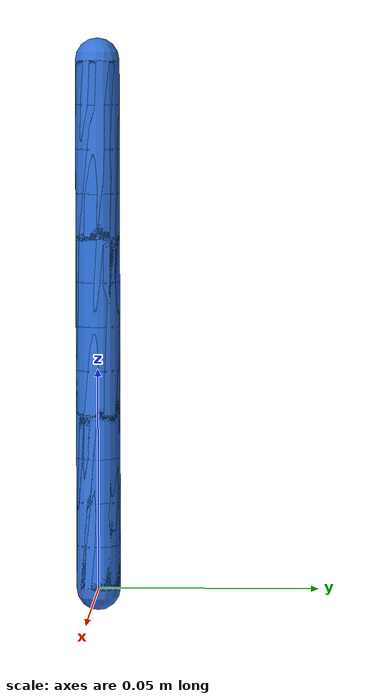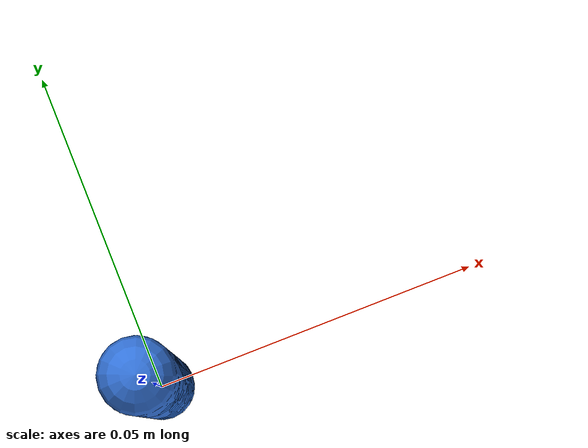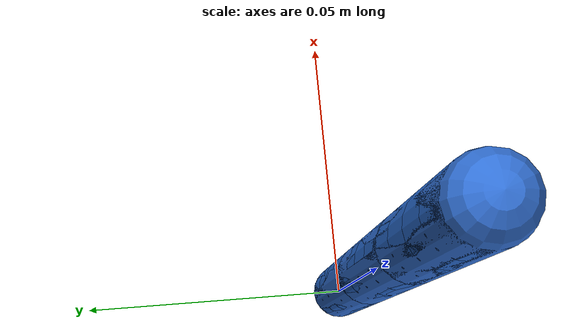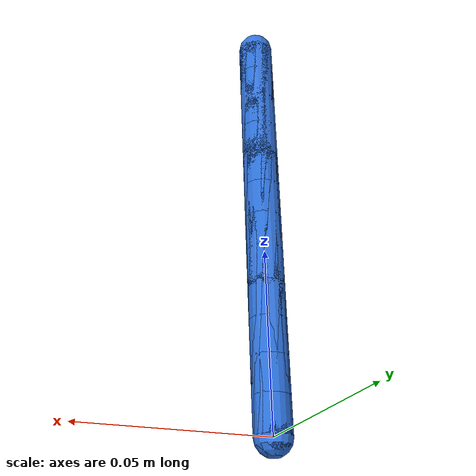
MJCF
<mujoco model="three_segment_2dof_follower_arm">
  <compiler angle="radian" />
  <option timestep="0.001" integrator="implicitfast" iterations="50" gravity="0 0 0" />
  <visual>
    <global azimuth="315" elevation="-25" offwidth="1080" offheight="720" />
    <headlight ambient="0.35 0.35 0.35" diffuse="0.75 0.75 0.75" specular="0.2 0.2 0.2" />
    <map znear="0.001" zfar="2" />
    <quality shadowsize="2048" />
  </visual>
  <default>
    <joint damping="0.05" armature="0.0001" limited="true" range="-0.25 0.25" stiffness="0.02" springref="0" />
    <geom type="capsule" size="0.004" density="1100" rgba="0.2 0.45 0.85 1" group="0" />
    <site size="0.003" rgba="0.95 0.25 0.2 1" />
    <position kp="40000" ctrllimited="true" ctrlrange="-0.02 0.02" forcelimited="true" forcerange="-20 20" />
  </default>
  <worldbody>
    <body name="base" pos="0 0 0">
      <site name="base_site" pos="0 0 0" quat="1 0 0 0" />
      <body name="segment_1" pos="0 0 0">
        <joint name="segment_1_x" type="hinge" axis="1 0 0" />
        <joint name="segment_1_y" type="hinge" axis="0 1 0" />
        <geom name="segment_1_backbone_geom" fromto="0 0 0 0 0 0.04" size="0.005" group="0" contype="0" conaffinity="0" />
        <site name="segment_1_tip" pos="0 0 0.04" quat="1 0 0 0" />
        <body name="segment_1_tip_frame" pos="0 0 0.04">
          <body name="segment_2" pos="0 0 0">
            <joint name="segment_2_x" type="hinge" axis="1 0 0" />
            <joint name="segment_2_y" type="hinge" axis="0 1 0" />
            <geom name="segment_2_backbone_geom" fromto="0 0 0 0 0 0.04" size="0.005" group="0" contype="0" conaffinity="0" />
            <site name="segment_2_tip" pos="0 0 0.04" quat="1 0 0 0" />
            <body name="segment_2_tip_frame" pos="0 0 0.04">
              <body name="segment_3" pos="0 0 0">
                <joint name="segment_3_x" type="hinge" axis="1 0 0" />
                <joint name="segment_3_y" type="hinge" axis="0 1 0" />
                <geom name="segment_3_backbone_geom" fromto="0 0 0 0 0 0.04" size="0.005" group="0" contype="0" conaffinity="0" />
                <site name="segment_3_tip" pos="0 0 0.04" quat="1 0 0 0" />
                <site name="tip" pos="0 0 0.04" quat="1 0 0 0" />
                <body name="segment_3_tip_frame" pos="0 0 0.04" />
              </body>
            </body>
          </body>
        </body>
      </body>
    </body>
    <body name="follower_segment_1_sample_1" mocap="true" pos="0 0 0.005">
      <geom name="follower_segment_1_sample_1_collision" type="capsule" fromto="0 0 -0.005 0 0 0.005" size="0.005" rgba="0.15 0.45 0.85 0.28" group="0" contype="1" conaffinity="1" />
      <geom name="follower_segment_1_sample_1_visual" type="capsule" fromto="0 0 -0.005 0 0 0.005" size="0.0041" rgba="0.05 0.7 0.9 0.42" group="1" contype="0" conaffinity="0" density="0" />
    </body>
    <body name="follower_segment_1_sample_2" mocap="true" pos="0 0 0.015">
      <geom name="follower_segment_1_sample_2_collision" type="capsule" fromto="0 0 -0.005 0 0 0.005" size="0.005" rgba="0.15 0.45 0.85 0.28" group="0" contype="1" conaffinity="1" />
      <geom name="follower_segment_1_sample_2_visual" type="capsule" fromto="0 0 -0.005 0 0 0.005" size="0.0041" rgba="0.05 0.7 0.9 0.42" group="1" contype="0" conaffinity="0" density="0" />
    </body>
    <body name="follower_segment_1_sample_3" mocap="true" pos="0 0 0.025">
      <geom name="follower_segment_1_sample_3_collision" type="capsule" fromto="0 0 -0.005 0 0 0.005" size="0.005" rgba="0.15 0.45 0.85 0.28" group="0" contype="1" conaffinity="1" />
      <geom name="follower_segment_1_sample_3_visual" type="capsule" fromto="0 0 -0.005 0 0 0.005" size="0.0041" rgba="0.05 0.7 0.9 0.42" group="1" contype="0" conaffinity="0" density="0" />
    </body>
    <body name="follower_segment_1_sample_4" mocap="true" pos="0 0 0.035">
      <geom name="follower_segment_1_sample_4_collision" type="capsule" fromto="0 0 -0.005 0 0 0.005" size="0.005" rgba="0.15 0.45 0.85 0.28" group="0" contype="1" conaffinity="1" />
      <geom name="follower_segment_1_sample_4_visual" type="capsule" fromto="0 0 -0.005 0 0 0.005" size="0.0041" rgba="0.05 0.7 0.9 0.42" group="1" contype="0" conaffinity="0" density="0" />
    </body>
    <body name="follower_segment_2_sample_1" mocap="true" pos="0 0 0.045">
      <geom name="follower_segment_2_sample_1_collision" type="capsule" fromto="0 0 -0.005 0 0 0.005" size="0.005" rgba="0.15 0.45 0.85 0.28" group="0" contype="1" conaffinity="1" />
      <geom name="follower_segment_2_sample_1_visual" type="capsule" fromto="0 0 -0.005 0 0 0.005" size="0.0041" rgba="0.05 0.7 0.9 0.42" group="1" contype="0" conaffinity="0" density="0" />
    </body>
    <body name="follower_segment_2_sample_2" mocap="true" pos="0 0 0.055">
      <geom name="follower_segment_2_sample_2_collision" type="capsule" fromto="0 0 -0.005 0 0 0.005" size="0.005" rgba="0.15 0.45 0.85 0.28" group="0" contype="1" conaffinity="1" />
      <geom name="follower_segment_2_sample_2_visual" type="capsule" fromto="0 0 -0.005 0 0 0.005" size="0.0041" rgba="0.05 0.7 0.9 0.42" group="1" contype="0" conaffinity="0" density="0" />
    </body>
    <body name="follower_segment_2_sample_3" mocap="true" pos="0 0 0.065">
      <geom name="follower_segment_2_sample_3_collision" type="capsule" fromto="0 0 -0.005 0 0 0.005" size="0.005" rgba="0.15 0.45 0.85 0.28" group="0" contype="1" conaffinity="1" />
      <geom name="follower_segment_2_sample_3_visual" type="capsule" fromto="0 0 -0.005 0 0 0.005" size="0.0041" rgba="0.05 0.7 0.9 0.42" group="1" contype="0" conaffinity="0" density="0" />
    </body>
    <body name="follower_segment_2_sample_4" mocap="true" pos="0 0 0.075">
      <geom name="follower_segment_2_sample_4_collision" type="capsule" fromto="0 0 -0.005 0 0 0.005" size="0.005" rgba="0.15 0.45 0.85 0.28" group="0" contype="1" conaffinity="1" />
      <geom name="follower_segment_2_sample_4_visual" type="capsule" fromto="0 0 -0.005 0 0 0.005" size="0.0041" rgba="0.05 0.7 0.9 0.42" group="1" contype="0" conaffinity="0" density="0" />
    </body>
    <body name="follower_segment_3_sample_1" mocap="true" pos="0 0 0.085">
      <geom name="follower_segment_3_sample_1_collision" type="capsule" fromto="0 0 -0.005 0 0 0.005" size="0.005" rgba="0.15 0.45 0.85 0.28" group="0" contype="1" conaffinity="1" />
      <geom name="follower_segment_3_sample_1_visual" type="capsule" fromto="0 0 -0.005 0 0 0.005" size="0.0041" rgba="0.05 0.7 0.9 0.42" group="1" contype="0" conaffinity="0" density="0" />
    </body>
    <body name="follower_segment_3_sample_2" mocap="true" pos="0 0 0.095">
      <geom name="follower_segment_3_sample_2_collision" type="capsule" fromto="0 0 -0.005 0 0 0.005" size="0.005" rgba="0.15 0.45 0.85 0.28" group="0" contype="1" conaffinity="1" />
      <geom name="follower_segment_3_sample_2_visual" type="capsule" fromto="0 0 -0.005 0 0 0.005" size="0.0041" rgba="0.05 0.7 0.9 0.42" group="1" contype="0" conaffinity="0" density="0" />
    </body>
    <body name="follower_segment_3_sample_3" mocap="true" pos="0 0 0.105">
      <geom name="follower_segment_3_sample_3_collision" type="capsule" fromto="0 0 -0.005 0 0 0.005" size="0.005" rgba="0.15 0.45 0.85 0.28" group="0" contype="1" conaffinity="1" />
      <geom name="follower_segment_3_sample_3_visual" type="capsule" fromto="0 0 -0.005 0 0 0.005" size="0.0041" rgba="0.05 0.7 0.9 0.42" group="1" contype="0" conaffinity="0" density="0" />
    </body>
    <body name="follower_segment_3_sample_4" mocap="true" pos="0 0 0.115">
      <geom name="follower_segment_3_sample_4_collision" type="capsule" fromto="0 0 -0.005 0 0 0.005" size="0.005" rgba="0.15 0.45 0.85 0.28" group="0" contype="1" conaffinity="1" />
      <geom name="follower_segment_3_sample_4_visual" type="capsule" fromto="0 0 -0.005 0 0 0.005" size="0.0041" rgba="0.05 0.7 0.9 0.42" group="1" contype="0" conaffinity="0" density="0" />
    </body>
  </worldbody>
  <tendon>
    <fixed name="tendon_1" limited="true" range="-0.02 0.02" damping="0" stiffness="0">
      <joint joint="segment_1_x" coef="0" />
      <joint joint="segment_1_y" coef="-0.005" />
    </fixed>
    <fixed name="tendon_2" limited="true" range="-0.02 0.02" damping="0" stiffness="0">
      <joint joint="segment_1_x" coef="0.00433012701892" />
      <joint joint="segment_1_y" coef="0.0025" />
    </fixed>
    <fixed name="tendon_3" limited="true" range="-0.02 0.02" damping="0" stiffness="0">
      <joint joint="segment_1_x" coef="-0.00433012701892" />
      <joint joint="segment_1_y" coef="0.0025" />
    </fixed>
    <fixed name="tendon_4" limited="true" range="-0.02 0.02" damping="0" stiffness="0">
      <joint joint="segment_1_x" coef="0.00433012701892" />
      <joint joint="segment_1_y" coef="-0.0025" />
      <joint joint="segment_2_x" coef="0.00433012701892" />
      <joint joint="segment_2_y" coef="-0.0025" />
    </fixed>
    <fixed name="tendon_5" limited="true" range="-0.02 0.02" damping="0" stiffness="0">
      <joint joint="segment_1_x" coef="6.12323399574e-19" />
      <joint joint="segment_1_y" coef="0.005" />
      <joint joint="segment_2_x" coef="6.12323399574e-19" />
      <joint joint="segment_2_y" coef="0.005" />
    </fixed>
    <fixed name="tendon_6" limited="true" range="-0.02 0.02" damping="0" stiffness="0">
      <joint joint="segment_1_x" coef="-0.00433012701892" />
      <joint joint="segment_1_y" coef="-0.0025" />
      <joint joint="segment_2_x" coef="-0.00433012701892" />
      <joint joint="segment_2_y" coef="-0.0025" />
    </fixed>
    <fixed name="tendon_7" limited="true" range="-0.02 0.02" damping="0" stiffness="0">
      <joint joint="segment_1_x" coef="0.005" />
      <joint joint="segment_1_y" coef="-3.06161699787e-19" />
      <joint joint="segment_2_x" coef="0.005" />
      <joint joint="segment_2_y" coef="-3.06161699787e-19" />
      <joint joint="segment_3_x" coef="0.005" />
      <joint joint="segment_3_y" coef="-3.06161699787e-19" />
    </fixed>
    <fixed name="tendon_8" limited="true" range="-0.02 0.02" damping="0" stiffness="0">
      <joint joint="segment_1_x" coef="-0.0025" />
      <joint joint="segment_1_y" coef="0.00433012701892" />
      <joint joint="segment_2_x" coef="-0.0025" />
      <joint joint="segment_2_y" coef="0.00433012701892" />
      <joint joint="segment_3_x" coef="-0.0025" />
      <joint joint="segment_3_y" coef="0.00433012701892" />
    </fixed>
    <fixed name="tendon_9" limited="true" range="-0.02 0.02" damping="0" stiffness="0">
      <joint joint="segment_1_x" coef="-0.0025" />
      <joint joint="segment_1_y" coef="-0.00433012701892" />
      <joint joint="segment_2_x" coef="-0.0025" />
      <joint joint="segment_2_y" coef="-0.00433012701892" />
      <joint joint="segment_3_x" coef="-0.0025" />
      <joint joint="segment_3_y" coef="-0.00433012701892" />
    </fixed>
  </tendon>
  <actuator>
    <position name="act_tendon_1" tendon="tendon_1" kp="40000" ctrllimited="true" ctrlrange="-0.02 0.02" forcelimited="true" forcerange="-20 20" />
    <position name="act_tendon_2" tendon="tendon_2" kp="40000" ctrllimited="true" ctrlrange="-0.02 0.02" forcelimited="true" forcerange="-20 20" />
    <position name="act_tendon_3" tendon="tendon_3" kp="40000" ctrllimited="true" ctrlrange="-0.02 0.02" forcelimited="true" forcerange="-20 20" />
    <position name="act_tendon_4" tendon="tendon_4" kp="40000" ctrllimited="true" ctrlrange="-0.02 0.02" forcelimited="true" forcerange="-20 20" />
    <position name="act_tendon_5" tendon="tendon_5" kp="40000" ctrllimited="true" ctrlrange="-0.02 0.02" forcelimited="true" forcerange="-20 20" />
    <position name="act_tendon_6" tendon="tendon_6" kp="40000" ctrllimited="true" ctrlrange="-0.02 0.02" forcelimited="true" forcerange="-20 20" />
    <position name="act_tendon_7" tendon="tendon_7" kp="40000" ctrllimited="true" ctrlrange="-0.02 0.02" forcelimited="true" forcerange="-20 20" />
    <position name="act_tendon_8" tendon="tendon_8" kp="40000" ctrllimited="true" ctrlrange="-0.02 0.02" forcelimited="true" forcerange="-20 20" />
    <position name="act_tendon_9" tendon="tendon_9" kp="40000" ctrllimited="true" ctrlrange="-0.02 0.02" forcelimited="true" forcerange="-20 20" />
  </actuator>
  <sensor>
    <tendonpos name="sensor_tendon_1_length" tendon="tendon_1" />
    <tendonvel name="sensor_tendon_1_velocity" tendon="tendon_1" />
    <actuatorfrc name="sensor_tendon_1_actuator_force" actuator="act_tendon_1" />
    <tendonpos name="sensor_tendon_2_length" tendon="tendon_2" />
    <tendonvel name="sensor_tendon_2_velocity" tendon="tendon_2" />
    <actuatorfrc name="sensor_tendon_2_actuator_force" actuator="act_tendon_2" />
    <tendonpos name="sensor_tendon_3_length" tendon="tendon_3" />
    <tendonvel name="sensor_tendon_3_velocity" tendon="tendon_3" />
    <actuatorfrc name="sensor_tendon_3_actuator_force" actuator="act_tendon_3" />
    <tendonpos name="sensor_tendon_4_length" tendon="tendon_4" />
    <tendonvel name="sensor_tendon_4_velocity" tendon="tendon_4" />
    <actuatorfrc name="sensor_tendon_4_actuator_force" actuator="act_tendon_4" />
    <tendonpos name="sensor_tendon_5_length" tendon="tendon_5" />
    <tendonvel name="sensor_tendon_5_velocity" tendon="tendon_5" />
    <actuatorfrc name="sensor_tendon_5_actuator_force" actuator="act_tendon_5" />
    <tendonpos name="sensor_tendon_6_length" tendon="tendon_6" />
    <tendonvel name="sensor_tendon_6_velocity" tendon="tendon_6" />
    <actuatorfrc name="sensor_tendon_6_actuator_force" actuator="act_tendon_6" />
    <tendonpos name="sensor_tendon_7_length" tendon="tendon_7" />
    <tendonvel name="sensor_tendon_7_velocity" tendon="tendon_7" />
    <actuatorfrc name="sensor_tendon_7_actuator_force" actuator="act_tendon_7" />
    <tendonpos name="sensor_tendon_8_length" tendon="tendon_8" />
    <tendonvel name="sensor_tendon_8_velocity" tendon="tendon_8" />
    <actuatorfrc name="sensor_tendon_8_actuator_force" actuator="act_tendon_8" />
    <tendonpos name="sensor_tendon_9_length" tendon="tendon_9" />
    <tendonvel name="sensor_tendon_9_velocity" tendon="tendon_9" />
    <actuatorfrc name="sensor_tendon_9_actuator_force" actuator="act_tendon_9" />
  </sensor>
</mujoco>
